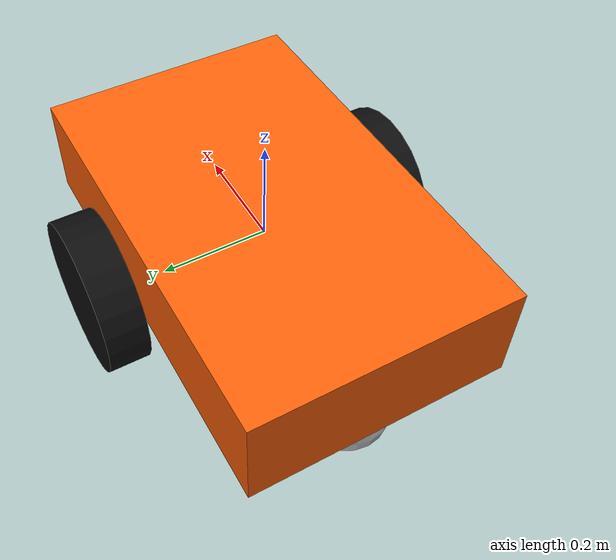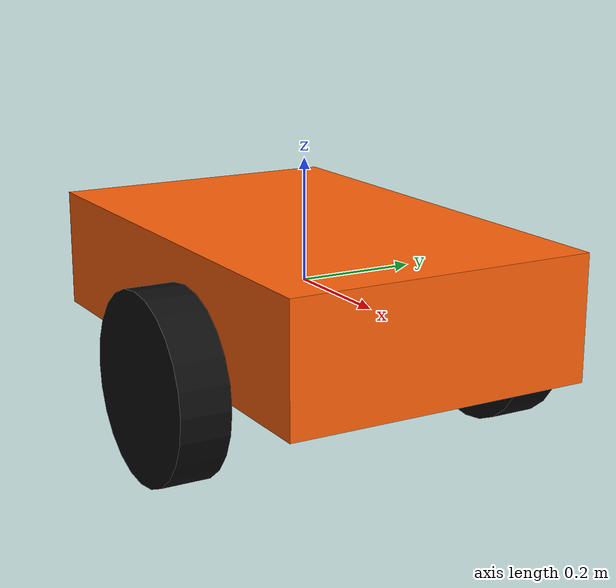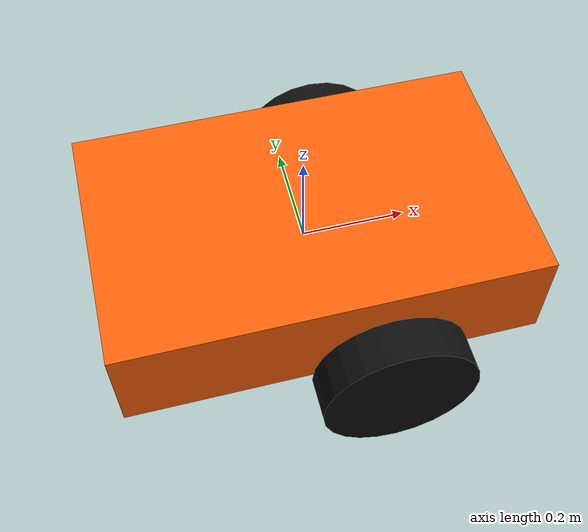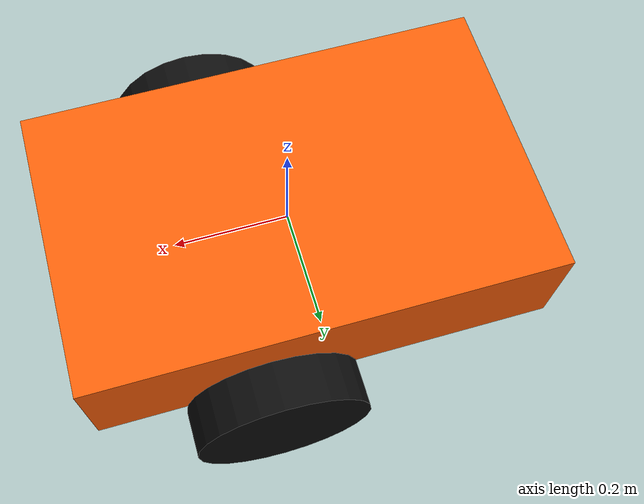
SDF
<?xml version="1.0"?>
<sdf version="1.8">
  <!-- Keep physics, sensors, joints, and plugins identical to
       zju_diff_vehicle. Only the body material is changed so vehicle_1
       is visually identifiable in the GUI. -->
  <model name="zju_reference_vehicle">
    <self_collide>false</self_collide>

    <link name="base_link">
      <pose>0 0 0 0 0 0</pose>
      <inertial>
        <mass>20.0</mass>
        <inertia>
          <ixx>0.4833333333</ixx>
          <iyy>1.1333333333</iyy>
          <izz>1.4833333333</izz>
          <ixy>0</ixy>
          <ixz>0</ixz>
          <iyz>0</iyz>
        </inertia>
      </inertial>
      <collision name="body_collision">
        <geometry>
          <box><size>0.8 0.5 0.2</size></box>
        </geometry>
      </collision>
      <visual name="body_visual">
        <geometry>
          <box><size>0.8 0.5 0.2</size></box>
        </geometry>
        <material>
          <ambient>0.85 0.25 0.03 1</ambient>
          <diffuse>1.0 0.38 0.04 1</diffuse>
        </material>
      </visual>

      <!-- The first version assumes the IMU and UWB reference point coincide
           with base_link and are axis-aligned with vehicle FLU. -->
      <sensor name="imu_sensor" type="imu">
        <always_on>true</always_on>
        <update_rate>100</update_rate>
        <ignition_frame_id>imu_link</ignition_frame_id>
      </sensor>

      <!-- Optional development sensors. They stay idle until their Gazebo
           topics have subscribers; the production localization nodes do not
           subscribe to either raw stream. -->
      <sensor name="front_lidar" type="gpu_lidar">
        <pose>0.20 0 0.20 0 0 0</pose>
        <always_on>false</always_on>
        <update_rate>5</update_rate>
        <visualize>false</visualize>
        <lidar>
          <scan>
            <horizontal>
              <samples>360</samples>
              <resolution>1</resolution>
              <min_angle>-3.141592653589793</min_angle>
              <max_angle>3.141592653589793</max_angle>
            </horizontal>
            <vertical>
              <samples>1</samples>
              <resolution>1</resolution>
              <min_angle>0</min_angle>
              <max_angle>0</max_angle>
            </vertical>
          </scan>
          <range>
            <min>0.20</min>
            <max>40.0</max>
            <resolution>0.02</resolution>
          </range>
        </lidar>
      </sensor>

      <sensor name="front_camera" type="camera">
        <pose>0.41 0 0.10 0 0 0</pose>
        <always_on>false</always_on>
        <update_rate>10</update_rate>
        <visualize>false</visualize>
        <camera>
          <horizontal_fov>1.047197551196598</horizontal_fov>
          <image>
            <width>320</width>
            <height>240</height>
            <format>R8G8B8</format>
          </image>
          <clip>
            <near>0.10</near>
            <far>50.0</far>
          </clip>
        </camera>
      </sensor>
    </link>

    <link name="left_wheel">
      <pose>0.10 0.30 -0.10 1.5707963267948966 0 0</pose>
      <inertial>
        <mass>1.0</mass>
        <inertia>
          <ixx>0.0061583333</ixx>
          <iyy>0.0061583333</iyy>
          <izz>0.01125</izz>
          <ixy>0</ixy><ixz>0</ixz><iyz>0</iyz>
        </inertia>
      </inertial>
      <collision name="collision">
        <geometry><cylinder><radius>0.15</radius><length>0.08</length></cylinder></geometry>
        <surface>
          <friction><ode><mu>1.0</mu><mu2>1.0</mu2></ode></friction>
        </surface>
      </collision>
      <visual name="visual">
        <geometry><cylinder><radius>0.15</radius><length>0.08</length></cylinder></geometry>
        <material><ambient>0.05 0.05 0.05 1</ambient><diffuse>0.05 0.05 0.05 1</diffuse></material>
      </visual>
    </link>

    <link name="right_wheel">
      <pose>0.10 -0.30 -0.10 1.5707963267948966 0 0</pose>
      <inertial>
        <mass>1.0</mass>
        <inertia>
          <ixx>0.0061583333</ixx>
          <iyy>0.0061583333</iyy>
          <izz>0.01125</izz>
          <ixy>0</ixy><ixz>0</ixz><iyz>0</iyz>
        </inertia>
      </inertial>
      <collision name="collision">
        <geometry><cylinder><radius>0.15</radius><length>0.08</length></cylinder></geometry>
        <surface>
          <friction><ode><mu>1.0</mu><mu2>1.0</mu2></ode></friction>
        </surface>
      </collision>
      <visual name="visual">
        <geometry><cylinder><radius>0.15</radius><length>0.08</length></cylinder></geometry>
        <material><ambient>0.05 0.05 0.05 1</ambient><diffuse>0.05 0.05 0.05 1</diffuse></material>
      </visual>
    </link>

    <link name="caster">
      <pose>-0.30 0 -0.17 0 0 0</pose>
      <inertial>
        <mass>0.5</mass>
        <inertia>
          <ixx>0.00128</ixx><iyy>0.00128</iyy><izz>0.00128</izz>
          <ixy>0</ixy><ixz>0</ixz><iyz>0</iyz>
        </inertia>
      </inertial>
      <collision name="collision">
        <geometry><sphere><radius>0.08</radius></sphere></geometry>
        <surface>
          <friction><ode><mu>0.0</mu><mu2>0.0</mu2></ode></friction>
        </surface>
      </collision>
      <visual name="visual">
        <geometry><sphere><radius>0.08</radius></sphere></geometry>
      </visual>
    </link>

    <joint name="left_wheel_joint" type="revolute">
      <parent>base_link</parent>
      <child>left_wheel</child>
      <axis>
        <xyz expressed_in="__model__">0 1 0</xyz>
      </axis>
    </joint>
    <joint name="right_wheel_joint" type="revolute">
      <parent>base_link</parent>
      <child>right_wheel</child>
      <axis>
        <xyz expressed_in="__model__">0 1 0</xyz>
      </axis>
    </joint>
    <joint name="caster_joint" type="fixed">
      <parent>base_link</parent>
      <child>caster</child>
    </joint>

    <plugin filename="libignition-gazebo-diff-drive-system.so"
            name="ignition::gazebo::systems::DiffDrive">
      <left_joint>left_wheel_joint</left_joint>
      <right_joint>right_wheel_joint</right_joint>
      <wheel_separation>0.60</wheel_separation>
      <wheel_radius>0.15</wheel_radius>
      <odom_publish_frequency>50</odom_publish_frequency>
      <max_linear_acceleration>0.30</max_linear_acceleration>
      <min_linear_acceleration>-0.30</min_linear_acceleration>
      <max_angular_acceleration>0.50</max_angular_acceleration>
      <min_angular_acceleration>-0.50</min_angular_acceleration>
    </plugin>
    <plugin filename="libignition-gazebo-pose-publisher-system.so"
            name="ignition::gazebo::systems::PosePublisher">
      <publish_link_pose>false</publish_link_pose>
      <publish_visual_pose>false</publish_visual_pose>
      <publish_collision_pose>false</publish_collision_pose>
      <publish_sensor_pose>false</publish_sensor_pose>
      <publish_model_pose>true</publish_model_pose>
      <publish_nested_model_pose>true</publish_nested_model_pose>
      <use_pose_vector_msg>true</use_pose_vector_msg>
      <update_frequency>50</update_frequency>
    </plugin>
  </model>
</sdf>
